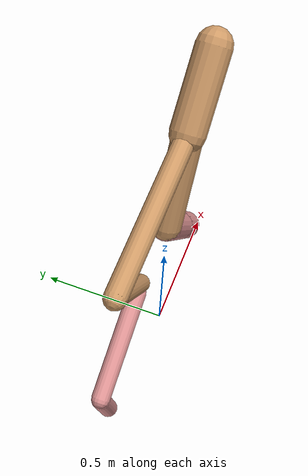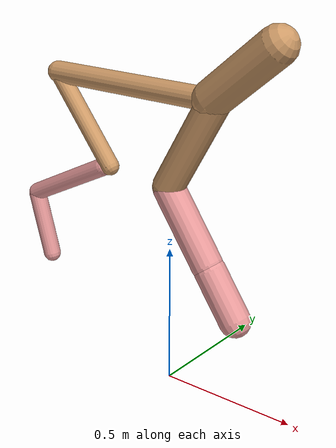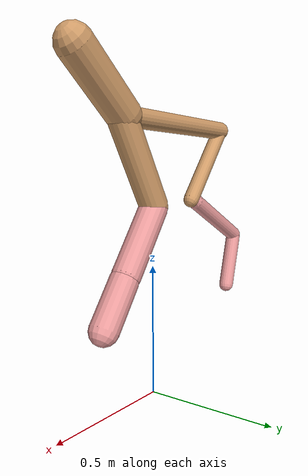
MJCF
<mujoco model="cheetah">
  <compiler angle="radian" coordinate="local" inertiafromgeom="true" settotalmass="14" />
  <default>
    <joint armature=".1" damping=".01" limited="true" solimplimit="0 .8 .03" solreflimit=".02 1" stiffness="8" />
    <geom conaffinity="0" condim="3" contype="1" friction="0.8 .1 .1" rgba="0.8 0.6 .4 1" solimp="0.0 0.8 0.01" solref="0.02 1" />
    <motor ctrllimited="true" ctrlrange="-1 1" />
  </default>
  <size nstack="300000" nuser_geom="1" />
  <option gravity="0 0 -9.81" timestep="0.01" />
  <worldbody>
    <body name="torso" pos="0.0 0.0 1.0489733420352834">
      <joint armature="0" axis="1 0 0" damping="0" limited="false" name="ignorex" pos="0 0 0" stiffness="0" type="slide" />
      <joint armature="0" axis="0 0 1" damping="0" limited="false" name="ignorez" pos="0 0 0" stiffness="0" type="slide" />
      <joint armature="0" axis="0 1 0" damping="0" limited="false" name="ignorey" pos="0 0 0" stiffness="0" type="hinge" />
      <geom fromto="-0.5 0.0 0.0 0.17678811257095345 0.0 0.0" name="torso" size="0.038143304707737656" type="capsule" />
      <geom axisangle="0 1 0 .87" name="head" pos="0.27678811257095337 0.0 0.1" size="0.06516315402710919 0.15" type="capsule" />

      <body name="bthigh" pos="-.5 0 0">
        <joint axis="0 1 0" damping="6" name="bthigh" pos="0 0 0" range="-.52 1.05" stiffness="240" type="hinge" />
        <geom axisangle="0 1 0 -3.8" name="bthigh" pos="0.12244500021642991 0.0 -0.15917850028135888" size="0.0322 0.18181253744833137" type="capsule" />
        <body name="bshin" pos="0.20489000043285982 0.0 -0.30835700056271775">
          <joint axis="0 1 0" damping="4.5" name="bshin" pos="0 0 0" range="-.785 .785" stiffness="180" type="hinge" />
          <geom axisangle="0 1 0 -2.03" name="bshin" pos="-0.17406151841050715 0.0 -0.08703075920525358" rgba="0.9 0.6 0.6 1" size="0.0322 0.1880819352913773" type="capsule" />
          <body name="bfoot" pos="-0.3481230368210143 0.0 -0.17406151841050715">
            <joint axis="0 1 0" damping="3" name="bfoot" pos="0 0 0" range="-.4 .785" stiffness="120" type="hinge" />
            <geom axisangle="0 1 0 -.27" name="bfoot" pos="0.03705129022449773 0.0 -0.119799171725876" rgba="0.9 0.6 0.6 1" size="0.0322 0.1178646794492631" type="capsule" />
            <inertial mass="10" />
          </body>
        </body>
      </body>
      <body name="fthigh" pos="0.1767881125709534 0.0 0.0">
        <joint axis="0 1 0" damping="4.5" name="fthigh" pos="0 0 0" range="-1.5 0.8" stiffness="180" type="hinge" />
        <geom axisangle="0 1 0 .52" name="fthigh" pos="-0.09446275618445696 0.0 -0.16193615345906903" size="0.05550287081384058 0.18154963858859072" type="capsule" />
        <body name="fshin" pos="-0.18892551236891392 0.0 -0.32387230691813806">
          <joint axis="0 1 0" damping="3" name="fshin" pos="0 0 0" range="-1.2 1.1" stiffness="120" type="hinge" />
          <geom axisangle="0 1 0 -.6" name="fshin" pos="0.08765479404011133 0.0 -0.12136817636323105" rgba="0.9 0.6 0.6 1" size="0.05550287081384058 0.14469369692023018" type="capsule" />
          <body name="ffoot" pos="0.17530958808022265 0.0 -0.2427363527264621">
            <joint axis="0 1 0" damping="1.5" name="ffoot" pos="0 0 0" range="-3.1 -0.3" stiffness="60" type="hinge" />
            <geom axisangle="0 1 0 -.6" name="ffoot" pos="0.05881767664331958 0.0 -0.09149416366738602" rgba="0.9 0.6 0.6 1" size="0.05550287081384058 0.09555244136241618" type="capsule" />
            <inertial mass="10" />
          </body>
        </body>
      </body>
    </body>
  </worldbody>
  <actuator>
    <motor gear="120" joint="bthigh" name="bthigh" />
    <motor gear="90" joint="bshin" name="bshin" />
    <motor gear="60" joint="bfoot" name="bfoot" />
    <motor gear="120" joint="fthigh" name="fthigh" />
    <motor gear="60" joint="fshin" name="fshin" />
    <motor gear="30" joint="ffoot" name="ffoot" />
  </actuator>
</mujoco>
